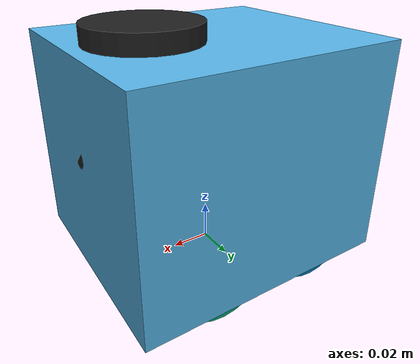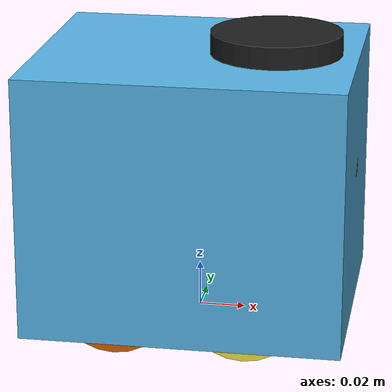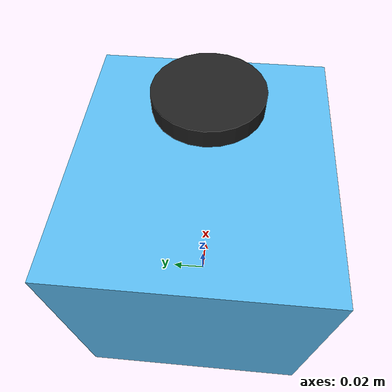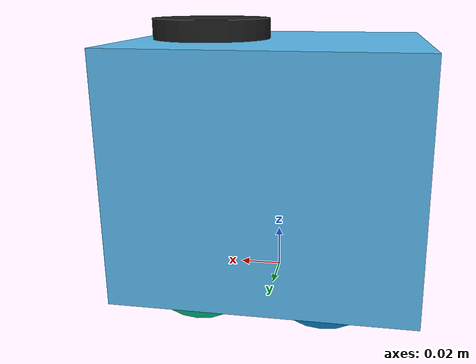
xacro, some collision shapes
<?xml version='1.0'?>

<robot name="aibot_mini" xmlns:xacro="http://ros.org/wiki/xacro">

  <xacro:include filename="$(find aibot_description)/urdf/chassis/inertial.xacro" />

  <link name='base_link' />

  <link name='base_footprint'>

    <visual name='base_footprint_visual'>
      <origin xyz="0 0 0" rpy="0 0 1.57"/>
      <geometry>
        <mesh filename="package://aibot_description/meshes/mini/car_body.stl" scale="0.001 0.001 0.001"/>
      </geometry>
    </visual>

    <collision name='collision_body'>
    <origin xyz="0 0 0.056" rpy="0 0 0"/>
      <geometry>
        <box size="0.135 0.118 0.112"/>
      </geometry>
    </collision>

    <box_inertial_matrix m="20" l="0.135" w="0.118" h="0.112"/>

  </link>

  <joint name="base_footprint_joint" type="fixed" >
    <origin xyz="0 0 0.004" rpy="0 0 0"/>
    <child link="base_footprint"/>
    <parent link="base_link"/>
  </joint>

  <link name="front_left_wheel">

    <visual name="front_left_wheel_visual">
      <origin xyz="0 0 0" rpy="0 1.5707 1.5707"/>
      <geometry>
        <cylinder radius="0.025" length="0.025"/>
      </geometry>
    </visual>

    <collision name="collision_front_left_wheel">
      <origin xyz="0 0 0" rpy="0 1.5707 1.5707"/>
      <geometry>
        <cylinder radius="0.025" length="0.025"/>
      </geometry>
    </collision>

    <cylinder_inertial_matrix m="0.5" r="0.025" h="0.025"/>

  </link>

  <link name="front_right_wheel">

    <visual name="front_right_wheel_visual">
      <origin xyz="0 0 0.0" rpy="0 1.5707 1.5707"/>
      <geometry>
        <cylinder radius="0.025" length="0.025"/>
      </geometry>
    </visual>

    <collision name="collision_front_right_wheel">
      <origin xyz="0 0 0" rpy="0 1.5707 1.5707"/>
      <geometry>
        <cylinder radius="0.025" length="0.025"/>
      </geometry>
    </collision>

    <cylinder_inertial_matrix m="0.5" r="0.025" h="0.025"/>

  </link>

  <joint name="front_left_wheel_hinge" type="fixed">
    <origin xyz="0.027 0.045 0.021" rpy="0 0 0"/>
    <child link="front_left_wheel"/>
    <parent link="base_footprint"/>
    <axis xyz="0 1 0" rpy="0 0 0"/>
    <limit effort="10000" velocity="1000"/>
    <joint_properties damping="1.0" friction="1.0"/>
  </joint>

  <joint name="front_right_wheel_hinge" type="fixed">
    <origin xyz="0.027 -0.045 0.021" rpy="0 0 0"/>
    <child link="front_right_wheel"/>
    <parent link="base_footprint"/>
    <axis xyz="0 1 0" rpy="0 0 0"/>
    <limit effort="10000" velocity="1000"/>
    <joint_properties damping="1.0" friction="1.0"/>
  </joint>

  <link name="rear_left_wheel">

    <visual name="rear_left_wheel_visual">
      <origin xyz="0 0 0" rpy="0 1.5707 1.5707"/>
      <geometry>
        <cylinder radius="0.025" length="0.025"/>
      </geometry>
    </visual>

    <collision name="collision_rear_left_wheel">
      <origin xyz="0 0 0" rpy="0 1.5707 1.5707"/>
      <geometry>
        <cylinder radius="0.025" length="0.025"/>
      </geometry>
    </collision>

    <cylinder_inertial_matrix m="0.5" r="0.025" h="0.025"/>

  </link>

  <link name="rear_right_wheel">

    <visual name="rear_right_wheel_visual">
      <origin xyz="0 0 0" rpy="0 1.5707 1.5707"/>
      <geometry>
        <cylinder radius="0.025" length="0.025"/>
      </geometry>
    </visual>

    <collision name="collision_rear_right_wheel">
      <origin xyz="0 0 0" rpy="0 1.5707 1.5707"/>
      <geometry>
        <cylinder radius="0.025" length="0.025"/>
      </geometry>
    </collision>

    <cylinder_inertial_matrix m="0.5" r="0.025" h="0.025"/>

  </link>

  <joint name="rear_left_wheel_hinge" type="fixed">
    <origin xyz="-0.027 0.045 0.021" rpy="0 0 0"/>
    <child link="rear_left_wheel"/>
    <parent link="base_footprint"/>
    <axis xyz="0 1 0" rpy="0 0 0"/>
    <limit effort="10000" velocity="1000"/>
    <joint_properties damping="1.0" friction="1.0"/>
  </joint>

  <joint name="rear_right_wheel_hinge" type="fixed">
    <origin xyz="-0.027 -0.045 0.021" rpy="0 0 0"/>
    <child link="rear_right_wheel"/>
    <parent link="base_footprint"/>
    <axis xyz="0 1 0" rpy="0 0 0"/>
    <limit effort="10000" velocity="1000"/>
    <joint_properties damping="1.0" friction="1.0"/>
  </joint>

  <link name="camera">

    <visual name="camera_visual">
      <origin xyz="0 0 0" rpy="0 0 0"/>
      <geometry>
        <cylinder radius="0.005" length="0.005"/>
      </geometry>
      <material name="black"/>
    </visual>

    <collision name="collision_camera">
      <origin xyz="0 0 0" rpy="0 0 0"/>
      <geometry>
        <cylinder radius="0.005" length="0.005"/>
      </geometry>
    </collision>

  </link>

  <joint name="camera_joint" type="fixed">
    <origin xyz="0.065 0 0.064" rpy="1.57 0 1.57"/>
    <parent link="base_footprint"/>
    <child link="camera"/>
  </joint>

  <link name="laser">

    <visual name="laser_visual">
      <origin xyz="0 0 0" rpy="0 0 0"/>
      <geometry>
        <cylinder radius="0.028" length="0.013"/>
      </geometry>
      <material name="green_black"/>
    </visual>

    <collision name="collision_laser">
      <origin xyz="0 0 0" rpy="0 0 0"/>
      <geometry>
        <cylinder radius="0.028" length="0.013"/>
      </geometry>
    </collision>

  </link>

  <joint name="laser_joint" type="fixed">
    <axis xyz="0 1 0" />
    <origin xyz="0.0325 0 0.115" rpy="0 0 1.57"/>
    <parent link="base_footprint"/>
    <child link="laser"/>
  </joint>

  <link name="imu_link">

    <visual name="imu_visual">
      <origin xyz="0 0 0" rpy="0 0 0"/>
      <geometry>
        <cylinder radius="0.001" length="0.001"/>
      </geometry>
      <material name="black"/>
    </visual>

  </link>

  <joint name="imu_joint" type="fixed">
    <origin xyz="-0.017 -0.01 0.09" rpy="0 0 1.57"/>
    <parent link="base_footprint"/>
    <child link="imu_link"/>
  </joint>

</robot>

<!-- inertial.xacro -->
<robot xmlns:xacro="http://ros.org/wiki/xacro">

  <xacro:macro name="sphere_inertial_matrix" params="m r">
    <inertial>
      <mass value="${m}" />
      <inertia ixx="${2*m*r*r/5}" ixy="0" ixz="0"
                iyy="${2*m*r*r/5}" iyz="0"
                izz="${2*m*r*r/5}" />
    </inertial>
  </xacro:macro>

  <xacro:macro name="cylinder_inertial_matrix" params="m r h">
    <inertial>
      <mass value="${m}" />
      <inertia ixx="${m*(3*r*r+h*h)/12}" ixy = "0" ixz = "0"
              iyy="${m*(3*r*r+h*h)/12}" iyz = "0"
              izz="${m*r*r/2}" />
    </inertial>
  </xacro:macro>

  <xacro:macro name="box_inertial_matrix" params="m l w h">
    <inertial>
      <mass value="${m}" />
        <inertia ixx="${m*(h*h + l*l)/12}" ixy = "0" ixz = "0"
                iyy="${m*(w*w + l*l)/12}" iyz= "0"
                izz="${m*(w*w + h*h)/12}" />
    </inertial>
  </xacro:macro>

</robot>
